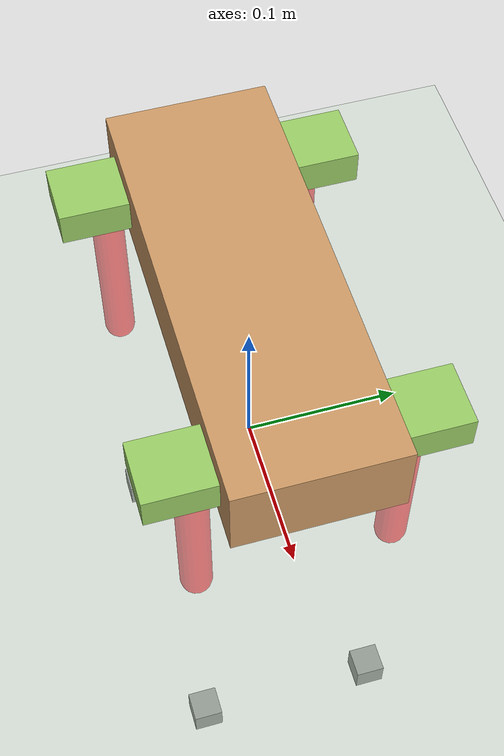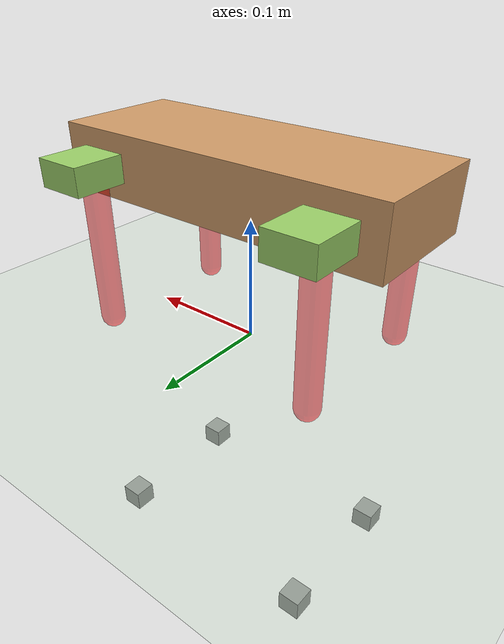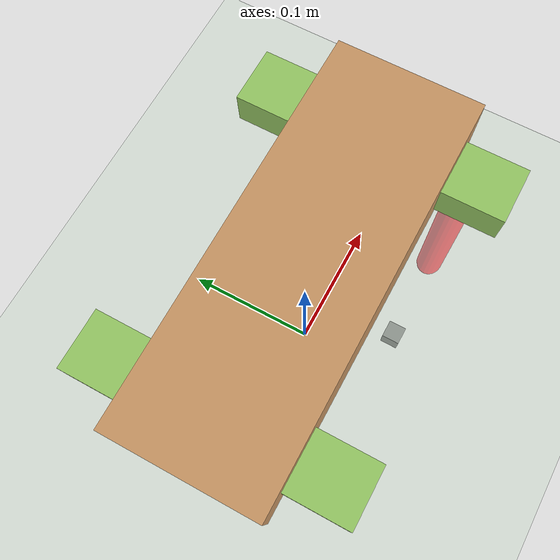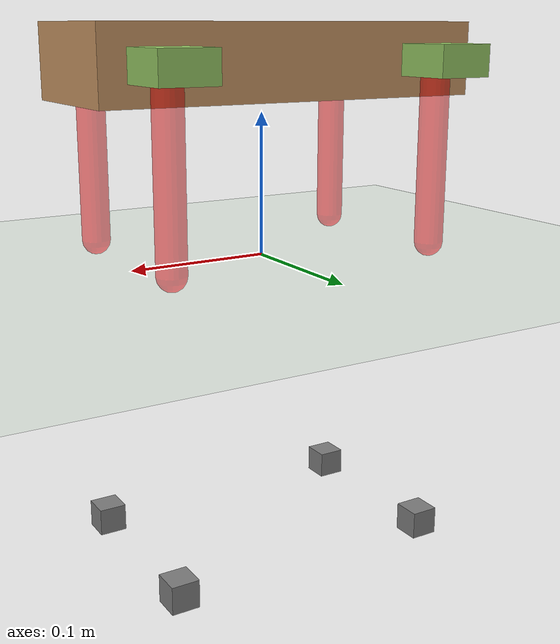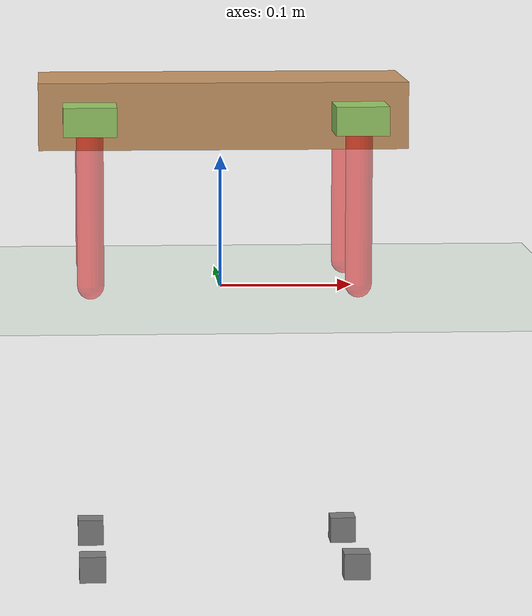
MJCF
<mujoco model="cheetah">
  <compiler angle="radian" coordinate="local" inertiafromgeom="false"/>

  <default>
    <joint armature="0.00968" solimplimit="0.9 0.95 0.001" solreflimit="0.001 1" stiffness="0"/>
    <geom conaffinity="0" condim="3" contype="1" friction="1.0 .1 .1" rgba="0.8 0.6 .4 1" solimp="0.9 0.95 0.001" solref="0.005 2"/>
    <position forcelimited="true"/>
  </default>

	<option>
		<flag sensornoise="disable"/>
	</option>

	<sensor>
		<accelerometer name="accel" noise="0.01" site="imu_site"/>
		<gyro name="gyro" noise="0.02" site="imu_site"/>

		<jointpos joint="fr_x" noise="0.001"/>
		<jointpos joint="fr_y" noise="0.001"/>
		<jointpos joint="fr_r" noise="0.001"/>

		<jointpos joint="fl_x" noise="0.001"/>
		<jointpos joint="fl_y" noise="0.001"/>
		<jointpos joint="fl_r" noise="0.001"/>

		<jointpos joint="br_x" noise="0.001"/>
		<jointpos joint="br_y" noise="0.001"/>
		<jointpos joint="br_r" noise="0.001"/>

		<jointpos joint="bl_x" noise="0.001"/>
		<jointpos joint="bl_y" noise="0.001"/>
		<jointpos joint="bl_r" noise="0.001"/>

		<jointvel joint="fr_x" noise="0.01"/>
		<jointvel joint="fr_y" noise="0.01"/>
		<jointvel joint="fr_r" noise="0.01"/>

		<jointvel joint="fl_x" noise="0.01"/>
		<jointvel joint="fl_y" noise="0.01"/>
		<jointvel joint="fl_r" noise="0.01"/>

		<jointvel joint="br_x" noise="0.01"/>
		<jointvel joint="br_y" noise="0.01"/>
		<jointvel joint="br_r" noise="0.01"/>

		<jointvel joint="bl_x" noise="0.01"/>
		<jointvel joint="bl_y" noise="0.01"/>
		<jointvel joint="bl_r" noise="0.01"/>
	</sensor>

  <size nstack="300000" nuser_geom="1"/>

	<!-- Took out gravity="0 0 -9.81" term-->
  <option timestep="0.001"/>
  <asset>
    <texture builtin="gradient" height="100" rgb1="1 1 1" rgb2="0 0 0" type="skybox" width="100"/>
    <texture builtin="flat" height="1278" mark="cross" markrgb="1 1 1" name="texgeom" random="0.01" rgb1="0.8 0.6 0.4" rgb2="0.8 0.6 0.4" type="cube" width="127"/>
    <texture builtin="checker" height="100" name="texplane" rgb1="0 0 0" rgb2="0.8 0.8 0.8" type="2d" width="100"/>
    <material name="MatPlane" reflectance="0.5" shininess="1" specular="1" texrepeat="60 60" texture="texplane"/>
    <material name="geom" texture="texgeom" texuniform="true"/>
  </asset>

  <worldbody>
    <light cutoff="100" diffuse="1 1 1" dir="-0 0 -1.3" directional="true" exponent="1" pos="0 0 1.3" specular=".1 .1 .1"/>
    <geom conaffinity="1" condim="3" material="MatPlane" name="floor" pos="0 0 0" rgba="0.8 0.9 0.8 1" size="40 40 40" type="plane"/>

    <body name="torso" pos="0 0 0.135">
      <camera name="track" mode="trackcom" pos="0 -2 0.3" xyaxes="1 0 0 0 0 1"/>
      <joint armature="0" axis="1 0 0" damping="0" limited="false" name="rootx" pos="0 0 0" stiffness="0" type="free"/>

			<inertial pos="0 0 0" mass="0.56" diaginertia="0.0003688 0.002508 0.002674"/>
      <geom pos="0 0 0" name="torso" size="0.138 0.05 0.025" type="box"/>

			<site name="imu_site" pos="0 0 0" size=".01 .01 .01" type="box"/>

      <body name="fr_module" pos="0.1 -0.0419 0">
        <geom pos="0 -0.0132 0" name="fr_block" type="box" size="0.0197 0.0372 0.0107" rgba="0.6 0.8 .4 1"/>

        <joint axis="1 0 0" name="fr_x" pos="0 0 0" limited="true" range="-1.57 1.57" type="hinge" damping="0.079"/>

				<inertial pos="0 0 0" mass="0.08" diaginertia="3.698e-05 7.127e-06 4.075e-05"/>

        <body name="fr" pos="0 -0.02 0">
          <joint axis="0 1 0" name="fr_y" pos="0 0 0" limited="true" range="-1.57 1.57" type="hinge" damping="0.079"/>
          <joint axis="0 0 1" name="fr_r" pos = "0 0 0" limited="true" range="-0.125 0.125" type = "slide" damping="2.0"/>

					<inertial pos="0 0 0" mass="0.03" diaginertia="0.0002253 6.493e-05 0.0002502"/>

					<site name="fr_force_site" pos="0 0 -0.34" size=".01 .01 .01" type="box"/>
          <geom axisangle="0 1 0 0" name="fr" fromto="0 0 0 0 0 -0.125" size="0.01" type="capsule" rgba = "1 0 0 0.5" density="50"/>
        </body>
      </body>

      <body name="fl_module" pos="0.1 0.0419 0">
        <geom pos = "0 0.0132 0" name="fl_block" type="box" size="0.0197 0.0372 0.0107" rgba="0.6 0.8 .4 1"/>
        <joint axis="1 0 0" name="fl_x" pos="0 0 0" limited="true" range="-1.57 1.57" type="hinge" damping="0.079"/>

				<inertial pos="0 0 0" mass="0.08" diaginertia="3.698e-05 7.127e-06 4.075e-05"/>

        <body name="fl" pos="0 0.02 0">
          <joint axis="0 1 0" name="fl_y" pos="0 0 0" limited="true" range="-1.57 1.57" type="hinge" damping="0.079"/>
          <joint axis="0 0 1" name="fl_r" pos = "0 0 0" limited="true" range="-0.125 0.125" type = "slide" damping="2.0"/>

					<inertial pos="0 0 0" mass="0.03" diaginertia="0.0002253 6.493e-05 0.0002502"/>

					<site name="fl_force_site" pos="0 0 -0.34" size=".01 .01 .01" type="box"/>
					<geom axisangle="0 1 0 0" name="fl" fromto="0 0 0 0 0 -0.125" size="0.01" type="capsule" rgba = "1 0 0 0.5" density="50"/>
        </body>
      </body>

      <body name="br_module" pos="-0.1 -0.0419 0">
        <geom pos = "0 -0.0132 0" name="br_block" type="box" size="0.0197 0.0372 0.0107" rgba="0.6 0.8 .4 1"/>
        <joint axis="1 0 0" name="br_x" pos="0 0 0" limited="true" range="-1.57 1.57" type="hinge" damping="0.079"/>

				<inertial pos="0 0 0" mass="0.08" diaginertia="3.698e-05 7.127e-06 4.075e-05"/>

        <body name="br" pos="0 -0.02 0">
          <joint axis="0 1 0" name="br_y" pos="0 0 0" limited="true" range="-1.57 1.57" type="hinge" damping="0.079"/>
          <joint axis="0 0 1" name="br_r" pos = "0 0 0" limited="true" range="-0.125 0.125" type = "slide" damping="2.0"/>

					<inertial pos="0 0 0" mass="0.03" diaginertia="0.0002253 6.493e-05 0.0002502"/>

					<site name="br_force_site" pos="0 0 -0.34" size=".01 .01 .01" type="box"/>
					<geom axisangle="0 1 0 0" name="br" fromto="0 0 0 0 0 -0.125" size="0.01" type="capsule" rgba = "1 0 0 0.5" density="50"/>
        </body>
      </body>

      <body name="bl_module" pos="-0.1 0.0419 0">
        <geom pos = "0 0.0132 0" name="bl_block" type="box" size="0.0197 0.0372 0.0107" rgba="0.6 0.8 .4 1"/>
        <joint axis="1 0 0" name="bl_x" pos="0 0 0" limited="true" range="-1.57 1.57" type="hinge" damping="0.079"/>

				<inertial pos="0 0 0" mass="0.08" diaginertia="3.698e-05 7.127e-06 4.075e-05"/>

        <body name="bl" pos="0 0.02 0">
          <joint axis="0 1 0" name="bl_y" pos="0 0 0" limited="true" range="-1.57 1.57" type="hinge" damping="0.079"/>
          <joint axis="0 0 1" name="bl_r" pos = "0 0 0" limited="true" range="-0.125 0.125" type = "slide" damping="2.0"/>

					<inertial pos="0 0 0" mass="0.03" diaginertia="0.0002253 6.493e-05 0.0002502"/>

					<site name="bl_force_site" pos="0 0 -0.34" size=".01 .01 .01" type="box"/>
					<geom axisangle="0 1 0 0" name="bl" fromto="0 0 0 0 0 -0.125" size="0.01" type="capsule" rgba = "1 0 0 0.5" density="50"/>
        </body>
      </body>
    </body>
  </worldbody>

  <actuator>
    <position gear="1" joint="fr_x" name="fr_x" kp="200" forcerange="-1.0 1.0"/>
    <position gear="1" joint="fr_y" name="fr_y" kp="200" forcerange="-1.0 1.0"/>
    <position gear="1" joint="fr_r" name="fr_r" kp="1000" forcerange="-15 15"/>

    <position gear="1" joint="fl_x" name="fl_x" kp="200" forcerange="-1.0 1.0"/>
    <position gear="1" joint="fl_y" name="fl_y" kp="200" forcerange="-1.0 1.0"/>
    <position gear="1" joint="fl_r" name="fl_r" kp="1000" forcerange="-15 15"/>

    <position gear="1" joint="br_x" name="br_x" kp="200" forcerange="-1.0 1.0"/>
    <position gear="1" joint="br_y" name="br_y" kp="200" forcerange="-1.0 1.0"/>
    <position gear="1" joint="br_r" name="br_r" kp="1000" forcerange="-15 15"/>

    <position gear="1" joint="bl_x" name="bl_x" kp="200" forcerange="-1.0 1.0"/>
    <position gear="1" joint="bl_y" name="bl_y" kp="200" forcerange="-1.0 1.0"/>
    <position gear="1" joint="bl_r" name="bl_r" kp="1000" forcerange="-15 15"/>
  </actuator>
</mujoco>
